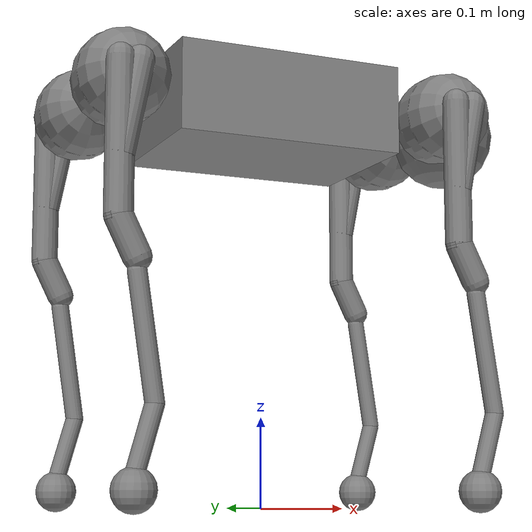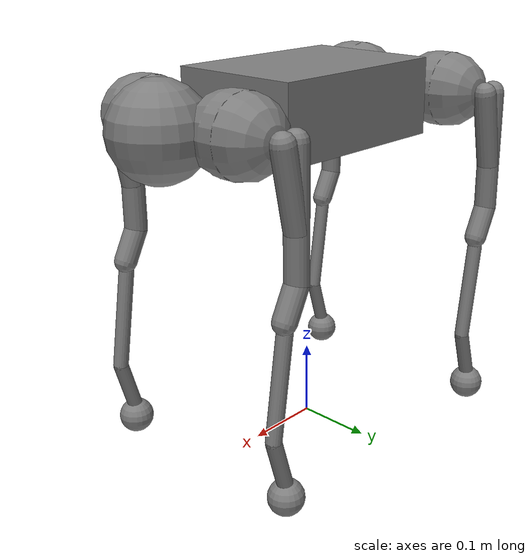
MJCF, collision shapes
<mujoco model="go2">
  <compiler angle="radian" meshdir="assets" autolimits="true"/>

  <default>
    <default class="go2">
      <default class="visual">
        <geom type="mesh" contype="0" conaffinity="0" group="2" material="dark"/>
      </default>
      <default class="collision">
        <geom group="3" type="capsule" contype="1" conaffinity="1"/>
        <default class="thigh1">
          <geom size="0.015" fromto="-0.02 0 0 -0.02 0 -0.16"/>
        </default>
        <default class="thigh2">
          <geom size="0.015" fromto="0 0 0 -0.02 0 -0.1"/>
        </default>
        <default class="thigh3">
          <geom size="0.015" fromto="-0.02 0 -0.16 0 0 -0.2"/>
        </default>
        <default class="calf1">
          <geom size="0.01" fromto="0 0 0 0.02 0 -0.13"/>
        </default>
        <default class="calf2">
          <geom size="0.01" fromto="0.02 0 -0.13 0 0 -0.2"/>
        </default>
        <default class="foot">
          <geom type="sphere" size="0.023" pos="0 0 -0.213"/>
        </default>
      </default>
    </default>
  </default>

  <asset>
    <material name="dark" rgba="0.8 0.8 0.8 1"/>

    <mesh class="go2" file="trunk.stl"/>
    <mesh class="go2" file="hip.stl"/>
    <mesh class="go2" file="thigh_mirror.stl"/>
    <mesh class="go2" file="calf.stl"/>
    <mesh class="go2" file="thigh.stl"/>
  </asset>

  <worldbody>
    <body name="trunk" pos="0 0 0.445" childclass="go2">
      <light pos="0 0 2" mode="trackcom"/>
      <camera name="tracking" pos="0.846 -1.3 0.316" xyaxes="0.866 0.500 0.000 -0.171 0.296 0.940" mode="trackcom"/>
      <camera name="top" pos="-1 0 1" xyaxes="0 -1 0 0.7 0 0.7" mode="trackcom"/>
      <camera name="side" pos="0 -1 .3" xyaxes="1 0 0 0 1 2" mode="trackcom"/>
      <camera name="back" pos="-1 0 .3" xyaxes="0 -1 0 1 0 2" mode="trackcom"/>
      <site name="head" pos="0.3 0 0" rgba="1 0 0 1" size="0.02" group="5"/>
      <inertial pos="0.021112 0 -0.005366" quat="-0.000543471 0.713435 -0.00173769 0.700719"
        mass="6.921"
        diaginertia="0.107027 0.0980771 0.0244531" />
      <freejoint name="floating_base_joint"/>
      <geom class="visual" mesh="trunk"/>
      <geom name="trunk_collision" class="collision" type="box" size="0.13 0.09 0.05" pos="0 0 0"/>
      <geom name="head_collision" class="collision" type="sphere" size="0.06" pos="0.24 0 0"/>
      <site name="imu" pos="-0.01592 -0.06659 -0.00617" group="5"/>
      <body name="FR_hip" pos="0.1934 -0.0465 0">
        <inertial pos="-0.0054 -0.00194 -0.000105" quat="0.498237 0.505462 0.499245 0.497014"
          mass="0.678"
          diaginertia="0.00088403 0.000596003 0.000479967" />
        <joint name="FR_hip_joint" axis="1 0 0" range="-0.863 0.863"/>
        <geom class="visual" mesh="hip" quat="1 0 0 0"/>
        <geom name="FR_hip_collision" class="collision" type="capsule" fromto="0 -0.02 0 0 -0.04 0" size="0.05"/>
        <body name="FR_thigh" pos="0 -0.0955 0">
          <inertial pos="-0.00374 0.0223 -0.0327" quat="0.551623 -0.0200632 0.0847635 0.829533"
            mass="1.152"
            diaginertia="0.00594973 0.00584149 0.000878787" />
          <joint name="FR_thigh_joint" axis="0 1 0" range="-0.686 4.501"/>
          <geom class="visual" mesh="thigh_mirror"/>
          <geom name="FR_thigh_collision1" class="thigh1"/>
          <geom name="FR_thigh_collision2" class="thigh2"/>
          <geom name="FR_thigh_collision3" class="thigh3"/>
          <body name="FR_calf" pos="0 0 -0.213">
            <inertial pos="0.00629595 0.000622121 -0.141417"
              quat="0.703508 -0.00450087 0.00154099 0.710672"
              mass="0.241352" diaginertia="0.0014901 0.00146356 5.31397e-05" />
            <joint name="FR_calf_joint" axis="0 1 0" range="-2.818 -0.888"/>
            <geom class="visual" mesh="calf"/>
            <geom name="FR_calf_collision1" class="calf1"/>
            <geom name="FR_calf_collision2" class="calf2"/>
            <geom name="FR_foot_collision" class="foot"/>
            <site name="FR" pos="0 0 -0.213" type="sphere" size="0.023" group="5"/>
          </body>
        </body>
      </body>
      <body name="FL_hip" pos="0.1934 0.0465 0">
        <inertial pos="-0.0054 0.00194 -0.000105" quat="0.497014 0.499245 0.505462 0.498237"
          mass="0.678"
          diaginertia="0.00088403 0.000596003 0.000479967" />
        <joint name="FL_hip_joint" axis="1 0 0" range="-0.863 0.863"/>
        <geom class="visual" mesh="hip"/>
        <geom name="FL_hip_collision" class="collision" type="capsule" fromto="0 0.02 0 0 0.04 0" size="0.05"/>
        <body name="FL_thigh" pos="0 0.0955 0">
           <inertial pos="-0.00374 -0.0223 -0.0327" quat="0.829533 0.0847635 -0.0200632 0.551623"
            mass="1.152"
            diaginertia="0.00594973 0.00584149 0.000878787" />
          <joint name="FL_thigh_joint" axis="0 1 0" range="-0.686 4.501"/>
          <geom class="visual" mesh="thigh"/>
          <geom name="FL_thigh_collision1" class="thigh1"/>
          <geom name="FL_thigh_collision2" class="thigh2"/>
          <geom name="FL_thigh_collision3" class="thigh3"/>
           <body name="FL_calf" pos="0 0 -0.213">
            <inertial pos="0.00629595 -0.000622121 -0.141417"
              quat="0.710672 0.00154099 -0.00450087 0.703508"
              mass="0.241352" diaginertia="0.0014901 0.00146356 5.31397e-05" />
            <joint name="FL_calf_joint" axis="0 1 0" range="-2.818 -0.888"/>
            <geom class="visual" mesh="calf"/>
            <geom name="FL_calf_collision1" class="calf1"/>
            <geom name="FL_calf_collision2" class="calf2"/>
            <geom name="FL_foot_collision" class="foot"/>
            <site name="FL" pos="0 0 -0.213" type="sphere" size="0.023" group="5"/>
          </body>
        </body>
      </body>
      <body name="RR_hip" pos="-0.1934 -0.0465 0">
        <inertial pos="0.0054 -0.00194 -0.000105" quat="0.499245 0.497014 0.498237 0.505462"
          mass="0.678"
          diaginertia="0.00088403 0.000596003 0.000479967" />
        <joint name="RR_hip_joint" axis="1 0 0" range="-0.863 0.863"/>
        <geom class="visual" quat="0 0 0 -1" mesh="hip"/>
        <geom name="RR_hip_collision" class="collision" type="capsule" fromto="0 -0.02 0 0 -0.04 0" size="0.05"/>
        <body name="RR_thigh" pos="0 -0.0955 0">
          <inertial pos="-0.00374 0.0223 -0.0327" quat="0.551623 -0.0200632 0.0847635 0.829533"
            mass="1.152"
            diaginertia="0.00594973 0.00584149 0.000878787" />
          <joint name="RR_thigh_joint" axis="0 1 0" range="-0.686 4.501"/>
          <geom class="visual" mesh="thigh_mirror"/>
          <geom name="RR_thigh_collision1" class="thigh1"/>
          <geom name="RR_thigh_collision2" class="thigh2"/>
          <geom name="RR_thigh_collision3" class="thigh3"/>
          <body name="RR_calf" pos="0 0 -0.213">
            <inertial pos="0.00629595 0.000622121 -0.141417"
              quat="0.703508 -0.00450087 0.00154099 0.710672"
              mass="0.241352" diaginertia="0.0014901 0.00146356 5.31397e-05" />
            <joint name="RR_calf_joint" axis="0 1 0" range="-2.818 -0.888"/>
            <geom class="visual" mesh="calf"/>
            <geom name="RR_calf_collision1" class="calf1"/>
            <geom name="RR_calf_collision2" class="calf2"/>
            <geom name="RR_foot_collision" class="foot"/>
            <site name="RR" pos="0 0 -0.213" type="sphere" size="0.023" group="5"/>
          </body>
        </body>
      </body>
      <body name="RL_hip" pos="-0.1934 0.0465 0">
        <inertial pos="0.0054 0.00194 -0.000105" quat="0.505462 0.498237 0.497014 0.499245"
          mass="0.678"
          diaginertia="0.00088403 0.000596003 0.000479967" />
        <joint name="RL_hip_joint" axis="1 0 0" range="-0.863 0.863"/>
        <geom class="visual" quat="0 0 1 0" mesh="hip"/>
        <geom name="RL_hip_collision" class="collision" type="capsule" fromto="0 0.02 0 0 0.04 0" size="0.05"/>
        <body name="RL_thigh" pos="0 0.0955 0">
          <inertial pos="-0.00374 -0.0223 -0.0327" quat="0.829533 0.0847635 -0.0200632 0.551623"
            mass="1.152"
            diaginertia="0.00594973 0.00584149 0.000878787" />
          <joint name="RL_thigh_joint" axis="0 1 0" range="-0.686 4.501"/>
          <geom class="visual" mesh="thigh"/>
          <geom name="RL_thigh_collision1" class="thigh1"/>
          <geom name="RL_thigh_collision2" class="thigh2"/>
          <geom name="RL_thigh_collision3" class="thigh3"/>
          <body name="RL_calf" pos="0 0 -0.213">
            <inertial pos="0.00629595 -0.000622121 -0.141417"
              quat="0.710672 0.00154099 -0.00450087 0.703508"
              mass="0.241352" diaginertia="0.0014901 0.00146356 5.31397e-05" />
            <joint name="RL_calf_joint" axis="0 1 0" range="-2.818 -0.888"/>
            <geom class="visual" mesh="calf"/>
            <geom name="RL_calf_collision1" class="calf1"/>
            <geom name="RL_calf_collision2" class="calf2"/>
            <geom name="RL_foot_collision" class="foot"/>
            <site name="RL" pos="0 0 -0.213" type="sphere" size="0.023" group="5"/>
          </body>
        </body>
      </body>
    </body>
  </worldbody>
</mujoco>
